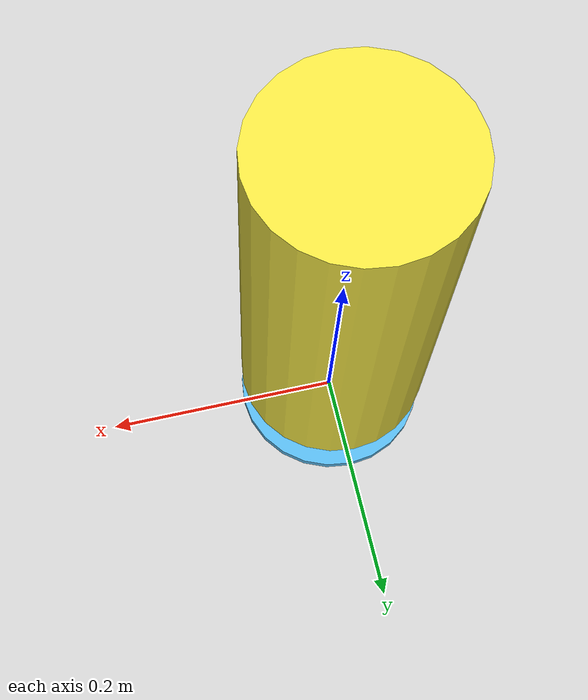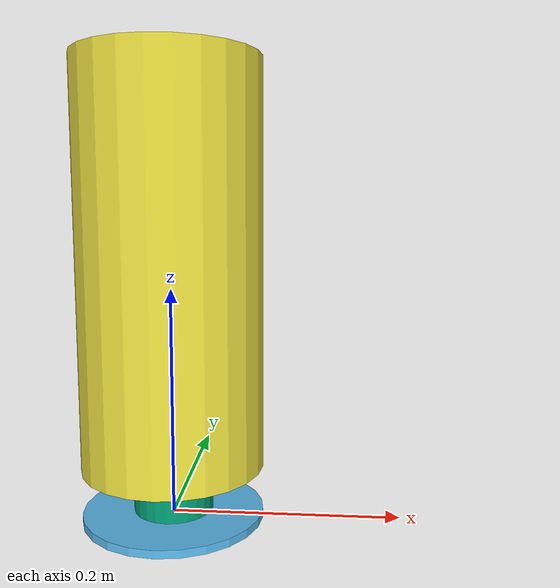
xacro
<?xml version="1.0"?>
<robot xmlns:xacro="http://www.ros.org/wiki/xacro" name="product">
<link name="base_link"/>
<joint name="base_link_joint" type="fixed">
  <origin xyz="0 0 0" rpy="0 0 0"/>
  <parent link="base_link"/>
  <child link="base"/>
</joint>

<xacro:property name="base_length" value="0.007"/>
<xacro:property name="base_radius" value="0.08"/>
<xacro:property name="base_mass" value="0.05"/>

<xacro:property name="pick_up_length" value="0.04"/>
<xacro:property name="pick_up_radius" value="0.035"/>
<xacro:property name="pick_up_mass" value="0.01"/>

<xacro:property name="product_length" value="0.35"/>
<xacro:property name="product_radius" value="0.08"/>
<xacro:property name="product_mass" value="0.05"/>

<link name="base">
  <visual>
    <geometry>
      <cylinder length="${base_length}" radius="${base_radius}"/>
    </geometry>
  </visual>
  <collision>
    <geometry>
      <cylinder length="${base_length}" radius="${base_radius}"/>
    </geometry>
  </collision>
  <inertial>
    <mass value="${base_mass}"/>
    <origin xyz="0 0 0"/>
    <inertia ixx="${(3*base_radius*base_radius+base_length*base_length)*base_mass/12}" ixy="0" ixz="0" iyy="${(3*base_radius*base_radius+base_length*base_length)*base_mass/12}" iyz="0" izz="${base_mass*base_radius*base_radius/2}" />
  </inertial>
</link>

<joint name="base_joint" type="fixed">
  <origin xyz="0 0 ${(base_length+pick_up_length)/2}" rpy="0 0 0"/>
  <parent link="base"/>
  <child link="pick_up_section"/>
</joint>
<link name="pick_up_section">
  <visual>
    <geometry>
    <cylinder length="${pick_up_length}" radius="${pick_up_radius}"/>
    </geometry>
  </visual>
  <collision>
    <geometry>
    <cylinder length="${pick_up_length}" radius="${pick_up_radius}"/>
    </geometry>
  </collision>
  <inertial>
    <mass value="${pick_up_mass}"/>
    <origin xyz="0 0 0"/>
    <inertia ixx="${(3*pick_up_radius*pick_up_radius+pick_up_length*pick_up_length)*pick_up_mass/12}" ixy="0" ixz="0" iyy="${(3*pick_up_radius*pick_up_radius+pick_up_length*pick_up_length)*pick_up_mass/12}" iyz="0" izz="${pick_up_mass*pick_up_radius*pick_up_radius/2}" />
  </inertial>
</link>

<joint name="pick_up_joint" type="fixed">
  <origin xyz="0 0 ${(pick_up_length+product_length)/2}" rpy="0 0 0"/>
  <parent link="pick_up_section"/>
  <child link="product"/>
</joint>
<link name="product">
  <visual>
    <geometry>
    <cylinder length="${product_length}" radius="${product_radius}"/>
    </geometry>
  </visual>
  <collision>
    <geometry>
    <cylinder length="${product_length}" radius="${product_radius}"/>
    </geometry>
  </collision>
  <inertial>
    <mass value="${product_mass}"/>
    <origin xyz="0 0 0"/>
    <inertia ixx="${(3*product_radius*product_radius+product_length*product_length)*product_mass/12}" ixy="0" ixz="0" iyy="${(3*product_radius*product_radius+product_length*product_length)*product_mass/12}" iyz="0" izz="${product_mass*product_radius*product_radius/2}" />
  </inertial>
  </link>
</robot>
